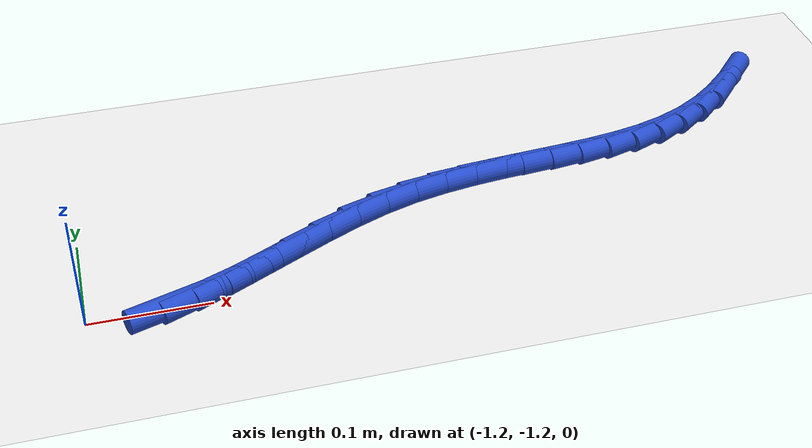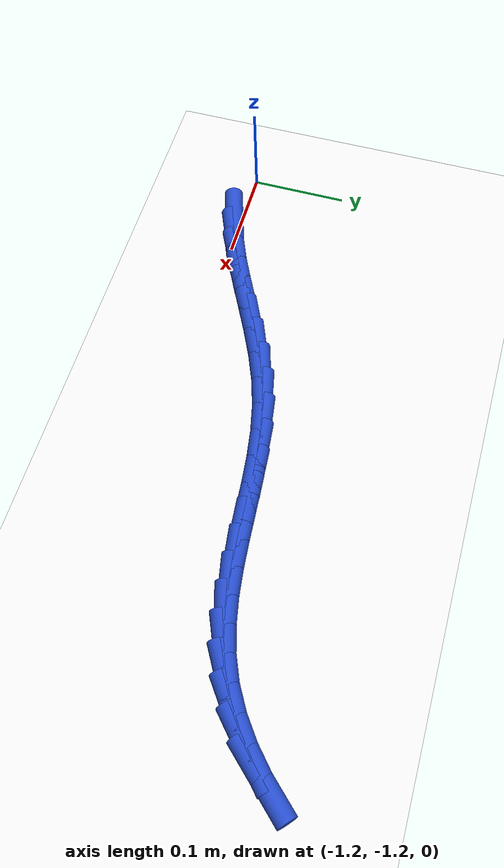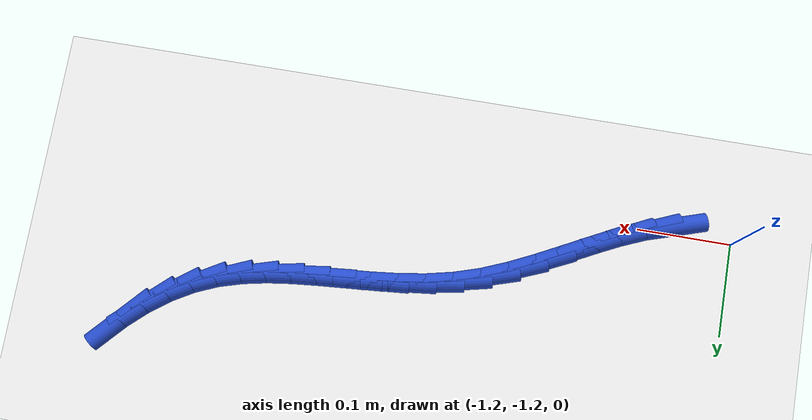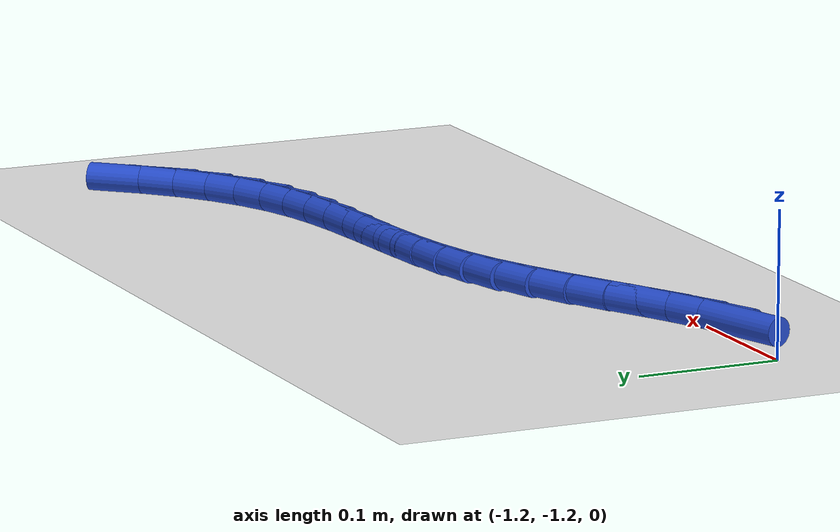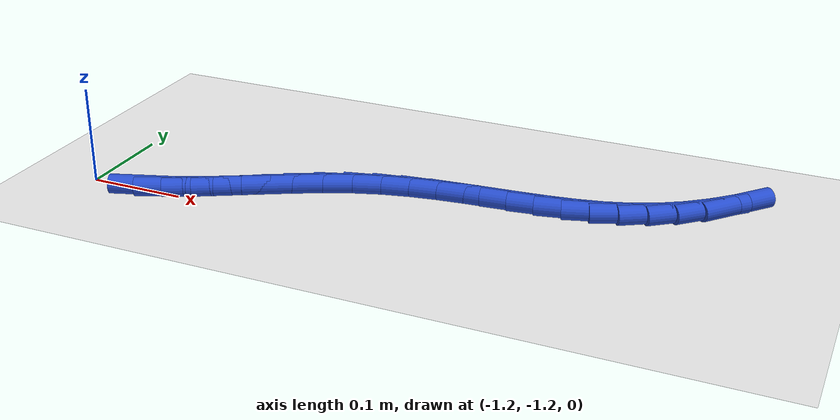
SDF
<sdf version="1.6">
 <world name="default">
  <model name="ground_plane">
   <static>1</static>
   <link name="link">
    <collision name="collision">
     <geometry><plane><normal>0 0 1</normal><size>100 100</size></plane></geometry>
     <surface><friction><ode><mu>100</mu><mu2>50</mu2></ode></friction></surface>
    </collision>
    <visual name="visual">
     <cast_shadows>0</cast_shadows>
     <geometry><plane><normal>0 0 1</normal><size>100 100</size></plane></geometry>
     <material>
      <script><uri>file://media/materials/scripts/gazebo.material</uri><name>Gazebo/WhiteGlow</name></script>
     </material>
    </visual>
   </link>
  </model>
  <model name="line">
   <link name="link_195">
    <pose>-1.1302630753733016 -1.2054507421598581 0.01 0 1.57 0.3119511859048908</pose>
    <collision name="collision">
     <geometry><cylinder><radius>0.01</radius><length>0.08</length></cylinder></geometry>
    </collision>
    <visual name="visual">
     <material>
      <script><name>Gazebo/Blue</name><uri>file://media/materials/scripts/gazebo.material</uri></script>
     </material>
     <geometry><cylinder><radius>0.01</radius><length>0.08</length></cylinder></geometry>
    </visual>
   </link>
   <link name="link_196">
    <pose>-1.105249414333634 -1.19738433049835 0.01 0 1.57 0.4033791506580668</pose>
    <collision name="collision">
     <geometry><cylinder><radius>0.01</radius><length>0.08</length></cylinder></geometry>
    </collision>
    <visual name="visual">
     <material>
      <script><name>Gazebo/Blue</name><uri>file://media/materials/scripts/gazebo.material</uri></script>
     </material>
     <geometry><cylinder><radius>0.01</radius><length>0.08</length></cylinder></geometry>
    </visual>
   </link>
   <link name="link_197">
    <pose>-1.0795102491652282 -1.186399315007743 0.01 0 1.57 0.45700855661156714</pose>
    <collision name="collision">
     <geometry><cylinder><radius>0.01</radius><length>0.08</length></cylinder></geometry>
    </collision>
    <visual name="visual">
     <material>
      <script><name>Gazebo/Blue</name><uri>file://media/materials/scripts/gazebo.material</uri></script>
     </material>
     <geometry><cylinder><radius>0.01</radius><length>0.08</length></cylinder></geometry>
    </visual>
   </link>
   <link name="link_198">
    <pose>-1.0531277738111013 -1.1734262994379232 0.01 0 1.57 0.48009594530041944</pose>
    <collision name="collision">
     <geometry><cylinder><radius>0.01</radius><length>0.08</length></cylinder></geometry>
    </collision>
    <visual name="visual">
     <material>
      <script><name>Gazebo/Blue</name><uri>file://media/materials/scripts/gazebo.material</uri></script>
     </material>
     <geometry><cylinder><radius>0.01</radius><length>0.08</length></cylinder></geometry>
    </visual>
   </link>
   <link name="link_199">
    <pose>-1.0261841822142703 -1.159395887538779 0.01 0 1.57 0.4765724864477061</pose>
    <collision name="collision">
     <geometry><cylinder><radius>0.01</radius><length>0.08</length></cylinder></geometry>
    </collision>
    <visual name="visual">
     <material>
      <script><name>Gazebo/Blue</name><uri>file://media/materials/scripts/gazebo.material</uri></script>
     </material>
     <geometry><cylinder><radius>0.01</radius><length>0.08</length></cylinder></geometry>
    </visual>
   </link>
   <link name="link_200">
    <pose>-0.9987616683177504 -1.1452386830601957 0.01 0 1.57 0.4475245627055778</pose>
    <collision name="collision">
     <geometry><cylinder><radius>0.01</radius><length>0.08</length></cylinder></geometry>
    </collision>
    <visual name="visual">
     <material>
      <script><name>Gazebo/Blue</name><uri>file://media/materials/scripts/gazebo.material</uri></script>
     </material>
     <geometry><cylinder><radius>0.01</radius><length>0.08</length></cylinder></geometry>
    </visual>
   </link>
   <link name="link_201">
    <pose>-0.9709424260645586 -1.1318852897520608 0.01 0 1.57 0.3916545567840767</pose>
    <collision name="collision">
     <geometry><cylinder><radius>0.01</radius><length>0.08</length></cylinder></geometry>
    </collision>
    <visual name="visual">
     <material>
      <script><name>Gazebo/Blue</name><uri>file://media/materials/scripts/gazebo.material</uri></script>
     </material>
     <geometry><cylinder><radius>0.01</radius><length>0.08</length></cylinder></geometry>
    </visual>
   </link>
   <link name="link_202">
    <pose>-0.942808649397711 -1.1202663113642608 0.01 0 1.57 0.3080009543297232</pose>
    <collision name="collision">
     <geometry><cylinder><radius>0.01</radius><length>0.08</length></cylinder></geometry>
    </collision>
    <visual name="visual">
     <material>
      <script><name>Gazebo/Blue</name><uri>file://media/materials/scripts/gazebo.material</uri></script>
     </material>
     <geometry><cylinder><radius>0.01</radius><length>0.08</length></cylinder></geometry>
    </visual>
   </link>
   <link name="link_203">
    <pose>-0.914444222770685 -1.111242885361959 0.01 0 1.57 0.22212994901526634</pose>
    <collision name="collision">
     <geometry><cylinder><radius>0.01</radius><length>0.08</length></cylinder></geometry>
    </collision>
    <visual name="visual">
     <material>
      <script><name>Gazebo/Blue</name><uri>file://media/materials/scripts/gazebo.material</uri></script>
     </material>
     <geometry><cylinder><radius>0.01</radius><length>0.08</length></cylinder></geometry>
    </visual>
   </link>
   <link name="link_204">
    <pose>-0.885954152663181 -1.1048082050471713 0.01 0 1.57 0.15466212221407827</pose>
    <collision name="collision">
     <geometry><cylinder><radius>0.01</radius><length>0.08</length></cylinder></geometry>
    </collision>
    <visual name="visual">
     <material>
      <script><name>Gazebo/Blue</name><uri>file://media/materials/scripts/gazebo.material</uri></script>
     </material>
     <geometry><cylinder><radius>0.01</radius><length>0.08</length></cylinder></geometry>
    </visual>
   </link>
   <link name="link_205">
    <pose>-0.8574578047188882 -1.1003654184090426 0.01 0 1.57 0.10736223871145789</pose>
    <collision name="collision">
     <geometry><cylinder><radius>0.01</radius><length>0.08</length></cylinder></geometry>
    </collision>
    <visual name="visual">
     <material>
      <script><name>Gazebo/Blue</name><uri>file://media/materials/scripts/gazebo.material</uri></script>
     </material>
     <geometry><cylinder><radius>0.01</radius><length>0.08</length></cylinder></geometry>
    </visual>
   </link>
   <link name="link_206">
    <pose>-0.8290748190488096 -1.0973063950535884 0.01 0 1.57 0.08093795782638369</pose>
    <collision name="collision">
     <geometry><cylinder><radius>0.01</radius><length>0.08</length></cylinder></geometry>
    </collision>
    <visual name="visual">
     <material>
      <script><name>Gazebo/Blue</name><uri>file://media/materials/scripts/gazebo.material</uri></script>
     </material>
     <geometry><cylinder><radius>0.01</radius><length>0.08</length></cylinder></geometry>
    </visual>
   </link>
   <link name="link_207">
    <pose>-0.8009248357639491 -1.0950230045868237 0.01 0 1.57 0.0759718581587639</pose>
    <collision name="collision">
     <geometry><cylinder><radius>0.01</radius><length>0.08</length></cylinder></geometry>
    </collision>
    <visual name="visual">
     <material>
      <script><name>Gazebo/Blue</name><uri>file://media/materials/scripts/gazebo.material</uri></script>
     </material>
     <geometry><cylinder><radius>0.01</radius><length>0.08</length></cylinder></geometry>
    </visual>
   </link>
   <link name="link_208">
    <pose>-0.7731274949753102 -1.0929071166147635 0.01 0 1.57 0.09328783199009794</pose>
    <collision name="collision">
     <geometry><cylinder><radius>0.01</radius><length>0.08</length></cylinder></geometry>
    </collision>
    <visual name="visual">
     <material>
      <script><name>Gazebo/Blue</name><uri>file://media/materials/scripts/gazebo.material</uri></script>
     </material>
     <geometry><cylinder><radius>0.01</radius><length>0.08</length></cylinder></geometry>
    </visual>
   </link>
   <link name="link_209">
    <pose>-0.7458024367938967 -1.090350600743423 0.01 0 1.57 0.13405282994987136</pose>
    <collision name="collision">
     <geometry><cylinder><radius>0.01</radius><length>0.08</length></cylinder></geometry>
    </collision>
    <visual name="visual">
     <material>
      <script><name>Gazebo/Blue</name><uri>file://media/materials/scripts/gazebo.material</uri></script>
     </material>
     <geometry><cylinder><radius>0.01</radius><length>0.08</length></cylinder></geometry>
    </visual>
   </link>
   <link name="link_210">
    <pose>-0.7190693013307121 -1.0867453265788174 0.01 0 1.57 0.19953223067476344</pose>
    <collision name="collision">
     <geometry><cylinder><radius>0.01</radius><length>0.08</length></cylinder></geometry>
    </collision>
    <visual name="visual">
     <material>
      <script><name>Gazebo/Blue</name><uri>file://media/materials/scripts/gazebo.material</uri></script>
     </material>
     <geometry><cylinder><radius>0.01</radius><length>0.08</length></cylinder></geometry>
    </visual>
   </link>
   <link name="link_211">
    <pose>-0.69304772869676 -1.0814831637269613 0.01 0 1.57 0.290366427547233</pose>
    <collision name="collision">
     <geometry><cylinder><radius>0.01</radius><length>0.08</length></cylinder></geometry>
    </collision>
    <visual name="visual">
     <material>
      <script><name>Gazebo/Blue</name><uri>file://media/materials/scripts/gazebo.material</uri></script>
     </material>
     <geometry><cylinder><radius>0.01</radius><length>0.08</length></cylinder></geometry>
    </visual>
   </link>
   <link name="link_212">
    <pose>-0.6678573590030445 -1.0739559817938702 0.01 0 1.57 0.4051293278632612</pose>
    <collision name="collision">
     <geometry><cylinder><radius>0.01</radius><length>0.08</length></cylinder></geometry>
    </collision>
    <visual name="visual">
     <material>
      <script><name>Gazebo/Blue</name><uri>file://media/materials/scripts/gazebo.material</uri></script>
     </material>
     <geometry><cylinder><radius>0.01</radius><length>0.08</length></cylinder></geometry>
    </visual>
   </link>
   <link name="link_213">
    <pose>-0.6436178615285756 -1.0635608095795082 0.01 0 1.57 0.5284020397761928</pose>
    <collision name="collision">
     <geometry><cylinder><radius>0.01</radius><length>0.08</length></cylinder></geometry>
    </collision>
    <visual name="visual">
     <material>
      <script><name>Gazebo/Blue</name><uri>file://media/materials/scripts/gazebo.material</uri></script>
     </material>
     <geometry><cylinder><radius>0.01</radius><length>0.08</length></cylinder></geometry>
    </visual>
   </link>
   <link name="link_214">
    <pose>-0.6204508383086933 -1.0500365389645994 0.01 0 1.57 0.6402229649679213</pose>
    <collision name="collision">
     <geometry><cylinder><radius>0.01</radius><length>0.08</length></cylinder></geometry>
    </collision>
    <visual name="visual">
     <material>
      <script><name>Gazebo/Blue</name><uri>file://media/materials/scripts/gazebo.material</uri></script>
     </material>
     <geometry><cylinder><radius>0.01</radius><length>0.08</length></cylinder></geometry>
    </visual>
   </link>
   <link name="link_215">
    <pose>-0.5984809971963505 -1.0336714142558256 0.01 0 1.57 0.740394863358948</pose>
    <collision name="collision">
     <geometry><cylinder><radius>0.01</radius><length>0.08</length></cylinder></geometry>
    </collision>
    <visual name="visual">
     <material>
      <script><name>Gazebo/Blue</name><uri>file://media/materials/scripts/gazebo.material</uri></script>
     </material>
     <geometry><cylinder><radius>0.01</radius><length>0.08</length></cylinder></geometry>
    </visual>
   </link>
   <link name="link_216">
    <pose>-0.5778333265006416 -1.0148032864272254 0.01 0 1.57 0.8309196463031836</pose>
    <collision name="collision">
     <geometry><cylinder><radius>0.01</radius><length>0.08</length></cylinder></geometry>
    </collision>
    <visual name="visual">
     <material>
      <script><name>Gazebo/Blue</name><uri>file://media/materials/scripts/gazebo.material</uri></script>
     </material>
     <geometry><cylinder><radius>0.01</radius><length>0.08</length></cylinder></geometry>
    </visual>
   </link>
  </model>
 </world>
</sdf>
